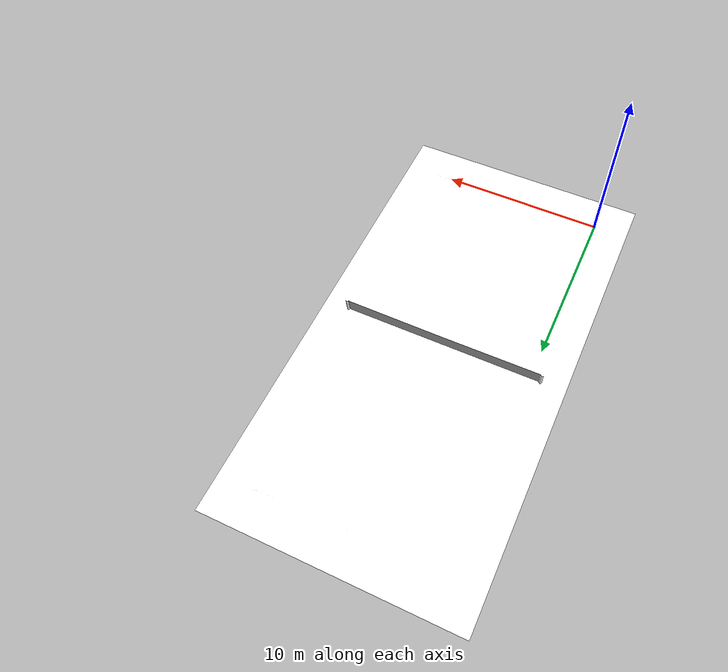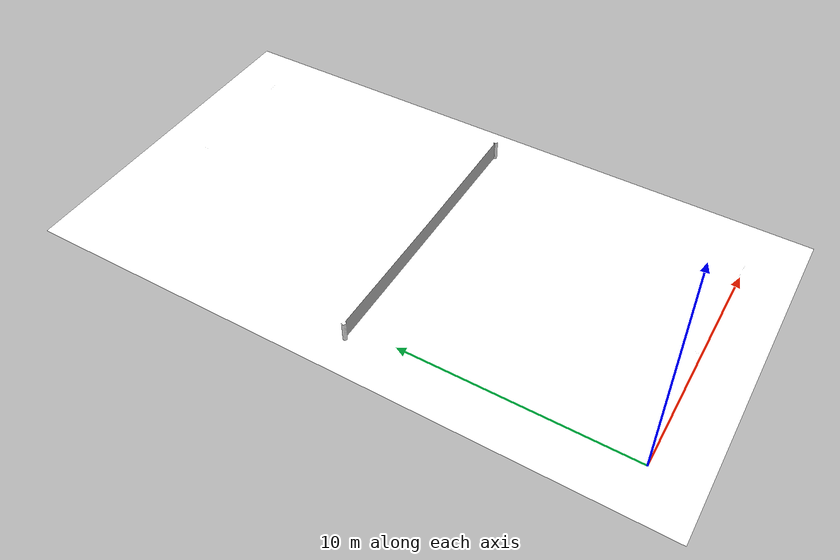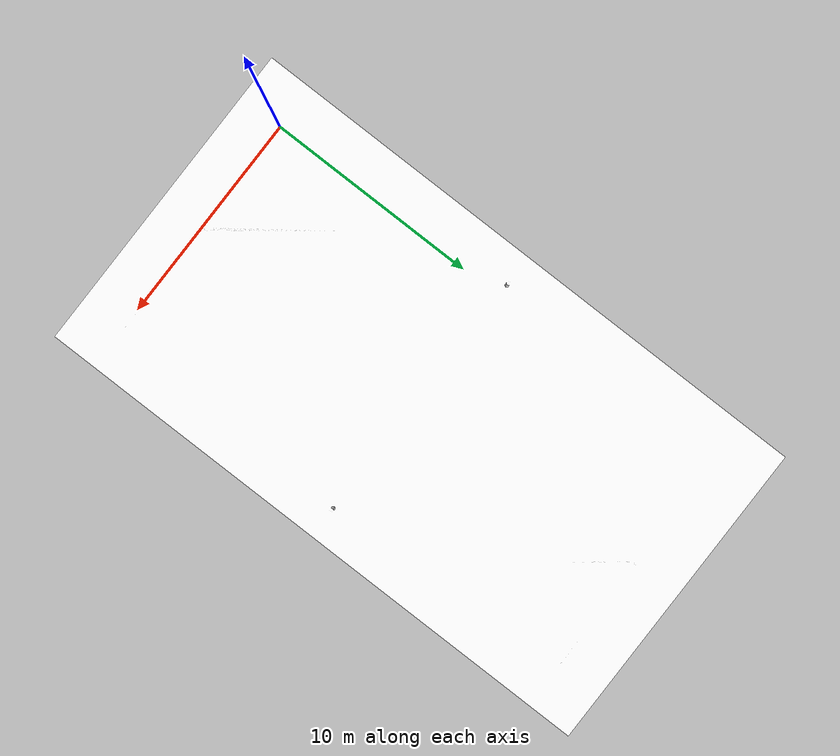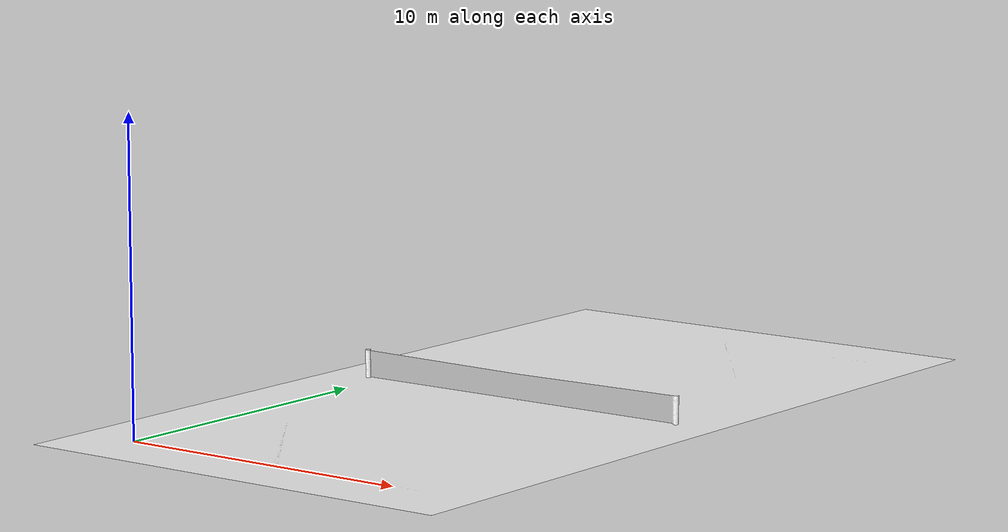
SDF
<?xml version="1.0" ?>
<sdf version="1.5">
  <model name="stop">
    <static>true</static>
    <link name="link">
      <collision name="collision">
        <geometry>
          <plane>
            <normal>0 0 1</normal>
            <size>100 100</size>
          </plane>
        </geometry>
      </collision>
      <visual name="visual">
      <cast_shadows>false</cast_shadows>
        <geometry>
          <mesh>
	          <uri>model://tennis/model.dae</uri>
          </mesh>
        </geometry>
      </visual>
    </link>
  </model>
</sdf>
